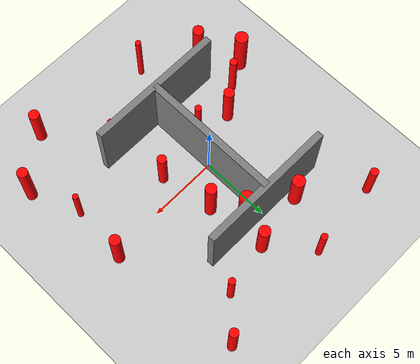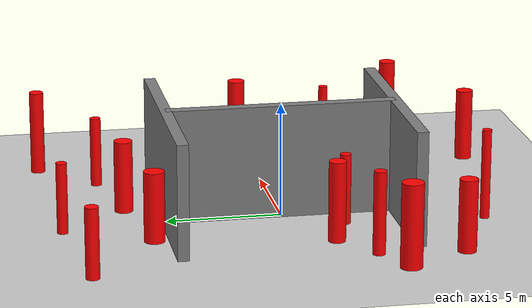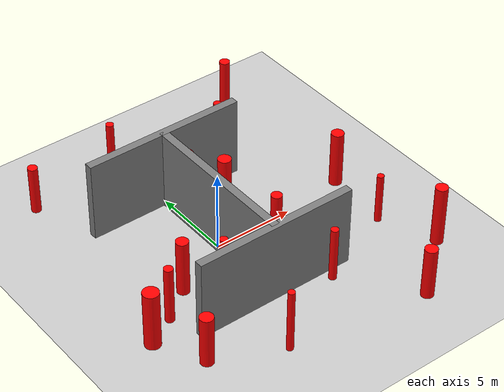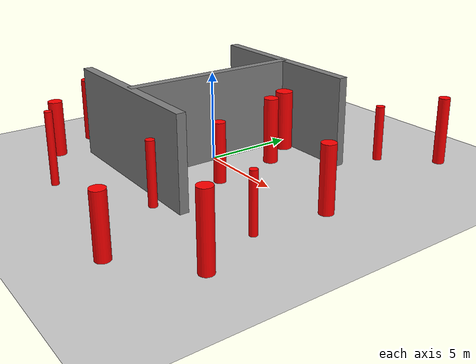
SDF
<sdf version='1.7'>
            <world name='default'>
                <light name='sun' type='directional'>
                <cast_shadows>1</cast_shadows>
                <pose>0 0 10 0 -0 0</pose>
                <diffuse>0.8 0.8 0.8 1</diffuse>
                <specular>0.2 0.2 0.2 1</specular>
                <attenuation>
                    <range>1000</range>
                    <constant>0.9</constant>
                    <linear>0.01</linear>
                    <quadratic>0.001</quadratic>
                </attenuation>
                <direction>-0.5 0.1 -0.9</direction>
                <spot>
                    <inner_angle>0</inner_angle>
                    <outer_angle>0</outer_angle>
                    <falloff>0</falloff>
                </spot>
                </light>
                <model name='ground_plane'>
                <static>1</static>
                <link name='link'>
                    <collision name='collision'>
                    <geometry>
                        <plane>
                        <normal>0 0 1</normal>
                        <size>100 100</size>
                        </plane>
                    </geometry>
                    <surface>
                        <contact>
                        <collide_bitmask>65535</collide_bitmask>
                        <ode/>
                        </contact>
                        <friction>
                        <ode>
                            <mu>100</mu>
                            <mu2>50</mu2>
                        </ode>
                        <torsional>
                            <ode/>
                        </torsional>
                        </friction>
                        <bounce/>
                    </surface>
                    <max_contacts>10</max_contacts>
                    </collision>
                    <visual name='visual'>
                    <cast_shadows>0</cast_shadows>
                    <geometry>
                        <plane>
                        <normal>0 0 1</normal>
                        <size>100 100</size>
                        </plane>
                    </geometry>
                    <material>
                        <script>
                        <uri>file://media/materials/scripts/gazebo.material</uri>
                        <name>Gazebo/Grey</name>
                        </script>
                    </material>
                    </visual>
                    <self_collide>0</self_collide>
                    <enable_wind>0</enable_wind>
                    <kinematic>0</kinematic>
                </link>
                </model>
                <gravity>0 0 -9.8</gravity>
                <magnetic_field>6e-06 2.3e-05 -4.2e-05</magnetic_field>
                <atmosphere type='adiabatic'/>
                <physics type='ode'>
                <max_step_size>0.001</max_step_size>
                <real_time_factor>1</real_time_factor>
                <real_time_update_rate>1000</real_time_update_rate>
                </physics>
                <scene>
                <ambient>0.4 0.4 0.4 1</ambient>
                <background>0.7 0.7 0.7 1</background>
                <shadows>1</shadows>
                </scene>
                <wind/>
                <spherical_coordinates>
                <surface_model>EARTH_WGS84</surface_model>
                <latitude_deg>0</latitude_deg>
                <longitude_deg>0</longitude_deg>
                <elevation>0</elevation>
                <heading_deg>0</heading_deg>
                </spherical_coordinates>

                            <model name='dynamic_cylinder_0_1.0_1.0_3.4'>
                            <static>true</static>
                            <pose>0.9762700785464951 4.30378732744839 1.7187936056313462 0 0 0</pose> <!-- X, Y, Z, Roll, Pitch, Yaw -->
                            <link name='link'>
                                <visual name='visual'>
                                    <geometry>
                                        <cylinder>
                                            <radius>0.4890988281503088</radius>
                                            <length>3.4375872112626924</length>
                                        </cylinder>
                                    </geometry>
                                    <material>
                                        <ambient>1 0 0 1</ambient> <!-- Red color -->
                                        <diffuse>1 0 0 1</diffuse> <!-- Red color -->
                                        <specular>0.5 0.5 0.5 1</specular> <!-- Specular highlight -->
                                    </material>
                                </visual>
                            </link>
                            <plugin name="obstacle_motion" filename="libobstaclePathPlugin.so">
                                <orientation>false</orientation>
                                <loop>0</loop>
                                <velocity>0.8917730007820798</velocity>
                                <path>
                                <waypoint>0.9762700785464951 4.30378732744839 1.7187936056313462</waypoint>
                                <waypoint>0.8976636599379368 -1.5269040132219054 1.7187936056313462</waypoint>
                                </path>
                            </plugin>
                            </model>

                            <model name='dynamic_cylinder_1_0.9_0.9_3.1'>
                            <static>true</static>
                            <pose>-2.3311696234844455 5.834500761653292 1.5435646498507705 0 0 0</pose> <!-- X, Y, Z, Roll, Pitch, Yaw -->
                            <link name='link'>
                                <visual name='visual'>
                                    <geometry>
                                        <cylinder>
                                            <radius>0.4497859536643814</radius>
                                            <length>3.087129299701541</length>
                                        </cylinder>
                                    </geometry>
                                    <material>
                                        <ambient>1 0 0 1</ambient> <!-- Red color -->
                                        <diffuse>1 0 0 1</diffuse> <!-- Red color -->
                                        <specular>0.5 0.5 0.5 1</specular> <!-- Specular highlight -->
                                    </material>
                                </visual>
                            </link>
                            <plugin name="obstacle_motion" filename="libobstaclePathPlugin.so">
                                <orientation>false</orientation>
                                <loop>0</loop>
                                <velocity>0.02021839744032572</velocity>
                                <path>
                                <waypoint>-2.3311696234844455 5.834500761653292 1.5435646498507705</waypoint>
                                <waypoint>1.3608912218786458 8.51193276585322 1.5435646498507705</waypoint>
                                </path>
                            </plugin>
                            </model>

                            <model name='dynamic_cylinder_2_0.5_0.5_3.1'>
                            <static>true</static>
                            <pose>5.563135018997009 7.400242964936382 1.5591372129344667 0 0 0</pose> <!-- X, Y, Z, Roll, Pitch, Yaw -->
                            <link name='link'>
                                <visual name='visual'>
                                    <geometry>
                                        <cylinder>
                                            <radius>0.24300598622271394</radius>
                                            <length>3.1182744258689334</length>
                                        </cylinder>
                                    </geometry>
                                    <material>
                                        <ambient>1 0 0 1</ambient> <!-- Red color -->
                                        <diffuse>1 0 0 1</diffuse> <!-- Red color -->
                                        <specular>0.5 0.5 0.5 1</specular> <!-- Specular highlight -->
                                    </material>
                                </visual>
                            </link>
                            <plugin name="obstacle_motion" filename="libobstaclePathPlugin.so">
                                <orientation>false</orientation>
                                <loop>0</loop>
                                <velocity>0.6399210213275238</velocity>
                                <path>
                                <waypoint>5.563135018997009 7.400242964936382 1.5591372129344667</waypoint>
                                <waypoint>5.983171284334471 -0.7704127549413631 1.5591372129344667</waypoint>
                                </path>
                            </plugin>
                            </model>

                            <model name='dynamic_cylinder_3_0.8_0.8_3.6'>
                            <static>true</static>
                            <pose>8.893378340991678 0.43696643500143395 1.7842169744343241 0 0 0</pose> <!-- X, Y, Z, Roll, Pitch, Yaw -->
                            <link name='link'>
                                <visual name='visual'>
                                    <geometry>
                                        <cylinder>
                                            <radius>0.3852906491227631</radius>
                                            <length>3.5684339488686483</length>
                                        </cylinder>
                                    </geometry>
                                    <material>
                                        <ambient>1 0 0 1</ambient> <!-- Red color -->
                                        <diffuse>1 0 0 1</diffuse> <!-- Red color -->
                                        <specular>0.5 0.5 0.5 1</specular> <!-- Specular highlight -->
                                    </material>
                                </visual>
                            </link>
                            <plugin name="obstacle_motion" filename="libobstaclePathPlugin.so">
                                <orientation>false</orientation>
                                <loop>0</loop>
                                <velocity>0.018789800436355142</velocity>
                                <path>
                                <waypoint>8.893378340991678 0.43696643500143395 1.7842169744343241</waypoint>
                                <waypoint>-4.70888775790746 5.484673788684333 1.7842169744343241</waypoint>
                                </path>
                            </plugin>
                            </model>

                            <model name='dynamic_cylinder_4_0.8_0.8_3.7'>
                            <static>true</static>
                            <pose>2.2419144544484286 2.3386799374951384 1.8488155979636325 0 0 0</pose> <!-- X, Y, Z, Roll, Pitch, Yaw -->
                            <link name='link'>
                                <visual name='visual'>
                                    <geometry>
                                        <cylinder>
                                            <radius>0.4000300146337003</radius>
                                            <length>3.697631195927265</length>
                                        </cylinder>
                                    </geometry>
                                    <material>
                                        <ambient>1 0 0 1</ambient> <!-- Red color -->
                                        <diffuse>1 0 0 1</diffuse> <!-- Red color -->
                                        <specular>0.5 0.5 0.5 1</specular> <!-- Specular highlight -->
                                    </material>
                                </visual>
                            </link>
                            <plugin name="obstacle_motion" filename="libobstaclePathPlugin.so">
                                <orientation>false</orientation>
                                <loop>0</loop>
                                <velocity>0.06022547162926983</velocity>
                                <path>
                                <waypoint>2.2419144544484286 2.3386799374951384 1.8488155979636325</waypoint>
                                <waypoint>3.636405982069668 -2.80984198852428 1.8488155979636325</waypoint>
                                </path>
                            </plugin>
                            </model>

                            <model name='dynamic_cylinder_5_0.5_0.5_3.4'>
                            <static>true</static>
                            <pose>3.412757392363188 -5.792348778523182 1.7193007567311602 0 0 0</pose> <!-- X, Y, Z, Roll, Pitch, Yaw -->
                            <link name='link'>
                                <visual name='visual'>
                                    <geometry>
                                        <cylinder>
                                            <radius>0.23061344322440844</radius>
                                            <length>3.4386015134623205</length>
                                        </cylinder>
                                    </geometry>
                                    <material>
                                        <ambient>1 0 0 1</ambient> <!-- Red color -->
                                        <diffuse>1 0 0 1</diffuse> <!-- Red color -->
                                        <specular>0.5 0.5 0.5 1</specular> <!-- Specular highlight -->
                                    </material>
                                </visual>
                            </link>
                            <plugin name="obstacle_motion" filename="libobstaclePathPlugin.so">
                                <orientation>false</orientation>
                                <loop>0</loop>
                                <velocity>0.9883738380592262</velocity>
                                <path>
                                <waypoint>3.412757392363188 -5.792348778523182 1.7193007567311602</waypoint>
                                <waypoint>-3.691432981516323 -2.725784581147548 1.7193007567311602</waypoint>
                                </path>
                            </plugin>
                            </model>

                            <model name='dynamic_cylinder_6_0.8_0.8_3.2'>
                            <static>true</static>
                            <pose>-5.822464878103306 -6.773809642300074 1.57948479182276 0 0 0</pose> <!-- X, Y, Z, Roll, Pitch, Yaw -->
                            <link name='link'>
                                <visual name='visual'>
                                    <geometry>
                                        <cylinder>
                                            <radius>0.396898876839582</radius>
                                            <length>3.15896958364552</length>
                                        </cylinder>
                                    </geometry>
                                    <material>
                                        <ambient>1 0 0 1</ambient> <!-- Red color -->
                                        <diffuse>1 0 0 1</diffuse> <!-- Red color -->
                                        <specular>0.5 0.5 0.5 1</specular> <!-- Specular highlight -->
                                    </material>
                                </visual>
                            </link>
                            <plugin name="obstacle_motion" filename="libobstaclePathPlugin.so">
                                <orientation>false</orientation>
                                <loop>0</loop>
                                <velocity>0.11037514116430513</velocity>
                                <path>
                                <waypoint>-5.822464878103306 -6.773809642300074 1.57948479182276</waypoint>
                                <waypoint>-4.934167949204358 -0.6737845428738751 1.57948479182276</waypoint>
                                </path>
                            </plugin>
                            </model>

                            <model name='dynamic_cylinder_7_0.5_0.5_3.1'>
                            <static>true</static>
                            <pose>-0.6269759670459685 9.535221763806742 1.5600982806065844 0 0 0</pose> <!-- X, Y, Z, Roll, Pitch, Yaw -->
                            <link name='link'>
                                <visual name='visual'>
                                    <geometry>
                                        <cylinder>
                                            <radius>0.23561831568627323</radius>
                                            <length>3.120196561213169</length>
                                        </cylinder>
                                    </geometry>
                                    <material>
                                        <ambient>1 0 0 1</ambient> <!-- Red color -->
                                        <diffuse>1 0 0 1</diffuse> <!-- Red color -->
                                        <specular>0.5 0.5 0.5 1</specular> <!-- Specular highlight -->
                                    </material>
                                </visual>
                            </link>
                            <plugin name="obstacle_motion" filename="libobstaclePathPlugin.so">
                                <orientation>false</orientation>
                                <loop>0</loop>
                                <velocity>0.29614019752214493</velocity>
                                <path>
                                <waypoint>-0.6269759670459685 9.535221763806742 1.5600982806065844</waypoint>
                                <waypoint>4.785271587966033 -9.216244154913586 1.5600982806065844</waypoint>
                                </path>
                            </plugin>
                            </model>

                            <model name='dynamic_cylinder_8_0.7_0.7_3.5'>
                            <static>true</static>
                            <pose>-3.6403364121204795 -1.7147401097066002 1.7616240267333498 0 0 0</pose> <!-- X, Y, Z, Roll, Pitch, Yaw -->
                            <link name='link'>
                                <visual name='visual'>
                                    <geometry>
                                        <cylinder>
                                            <radius>0.3727839486668538</radius>
                                            <length>3.5232480534666997</length>
                                        </cylinder>
                                    </geometry>
                                    <material>
                                        <ambient>1 0 0 1</ambient> <!-- Red color -->
                                        <diffuse>1 0 0 1</diffuse> <!-- Red color -->
                                        <specular>0.5 0.5 0.5 1</specular> <!-- Specular highlight -->
                                    </material>
                                </visual>
                            </link>
                            <plugin name="obstacle_motion" filename="libobstaclePathPlugin.so">
                                <orientation>false</orientation>
                                <loop>0</loop>
                                <velocity>0.09394051075844168</velocity>
                                <path>
                                <waypoint>-3.6403364121204795 -1.7147401097066002 1.7616240267333498</waypoint>
                                <waypoint>3.849442387400398 1.3320290841315021 1.7616240267333498</waypoint>
                                </path>
                            </plugin>
                            </model>

                            <model name='dynamic_cylinder_9_0.4_0.4_3.2'>
                            <static>true</static>
                            <pose>8.585923951524283 -3.628620950973527 1.5915956810035583 0 0 0</pose> <!-- X, Y, Z, Roll, Pitch, Yaw -->
                            <link name='link'>
                                <visual name='visual'>
                                    <geometry>
                                        <cylinder>
                                            <radius>0.20603226385624807</radius>
                                            <length>3.1831913620071166</length>
                                        </cylinder>
                                    </geometry>
                                    <material>
                                        <ambient>1 0 0 1</ambient> <!-- Red color -->
                                        <diffuse>1 0 0 1</diffuse> <!-- Red color -->
                                        <specular>0.5 0.5 0.5 1</specular> <!-- Specular highlight -->
                                    </material>
                                </visual>
                            </link>
                            <plugin name="obstacle_motion" filename="libobstaclePathPlugin.so">
                                <orientation>false</orientation>
                                <loop>0</loop>
                                <velocity>0.5865129348100832</velocity>
                                <path>
                                <waypoint>8.585923951524283 -3.628620950973527 1.5915956810035583</waypoint>
                                <waypoint>-7.364042751912157 4.32654408237131 1.5915956810035583</waypoint>
                                </path>
                            </plugin>
                            </model>

                            <model name='dynamic_cylinder_10_0.8_0.8_3.2'>
                            <static>true</static>
                            <pose>6.578800584347263 -9.906090476149059 1.624376571759979 0 0 0</pose> <!-- X, Y, Z, Roll, Pitch, Yaw -->
                            <link name='link'>
                                <visual name='visual'>
                                    <geometry>
                                        <cylinder>
                                            <radius>0.3776125793815517</radius>
                                            <length>3.248753143519958</length>
                                        </cylinder>
                                    </geometry>
                                    <material>
                                        <ambient>1 0 0 1</ambient> <!-- Red color -->
                                        <diffuse>1 0 0 1</diffuse> <!-- Red color -->
                                        <specular>0.5 0.5 0.5 1</specular> <!-- Specular highlight -->
                                    </material>
                                </visual>
                            </link>
                            <plugin name="obstacle_motion" filename="libobstaclePathPlugin.so">
                                <orientation>false</orientation>
                                <loop>0</loop>
                                <velocity>0.5761573344178369</velocity>
                                <path>
                                <waypoint>6.578800584347263 -9.906090476149059 1.624376571759979</waypoint>
                                <waypoint>-4.599840536156703 4.703880442451897 1.624376571759979</waypoint>
                                </path>
                            </plugin>
                            </model>

                            <model name='dynamic_cylinder_11_0.7_0.7_3.3'>
                            <static>true</static>
                            <pose>2.8798039845927477 -1.522899028836406 1.645038803605222 0 0 0</pose> <!-- X, Y, Z, Roll, Pitch, Yaw -->
                            <link name='link'>
                                <visual name='visual'>
                                    <geometry>
                                        <cylinder>
                                            <radius>0.32863061028372986</radius>
                                            <length>3.290077607210444</length>
                                        </cylinder>
                                    </geometry>
                                    <material>
                                        <ambient>1 0 0 1</ambient> <!-- Red color -->
                                        <diffuse>1 0 0 1</diffuse> <!-- Red color -->
                                        <specular>0.5 0.5 0.5 1</specular> <!-- Specular highlight -->
                                    </material>
                                </visual>
                            </link>
                            <plugin name="obstacle_motion" filename="libobstaclePathPlugin.so">
                                <orientation>false</orientation>
                                <loop>0</loop>
                                <velocity>0.6180154289988415</velocity>
                                <path>
                                <waypoint>2.8798039845927477 -1.522899028836406 1.645038803605222</waypoint>
                                <waypoint>-9.61613603381333 -3.9685036665090134 1.645038803605222</waypoint>
                                </path>
                            </plugin>
                            </model>

                            <model name='dynamic_cylinder_12_0.9_0.9_3.7'>
                            <static>true</static>
                            <pose>-7.290518715550995 -4.034353480879385 1.8260516350008444 0 0 0</pose> <!-- X, Y, Z, Roll, Pitch, Yaw -->
                            <link name='link'>
                                <visual name='visual'>
                                    <geometry>
                                        <cylinder>
                                            <radius>0.4689639787553189</radius>
                                            <length>3.652103270001689</length>
                                        </cylinder>
                                    </geometry>
                                    <material>
                                        <ambient>1 0 0 1</ambient> <!-- Red color -->
                                        <diffuse>1 0 0 1</diffuse> <!-- Red color -->
                                        <specular>0.5 0.5 0.5 1</specular> <!-- Specular highlight -->
                                    </material>
                                </visual>
                            </link>
                            <plugin name="obstacle_motion" filename="libobstaclePathPlugin.so">
                                <orientation>false</orientation>
                                <loop>0</loop>
                                <velocity>0.43141843543397396</velocity>
                                <path>
                                <waypoint>-7.290518715550995 -4.034353480879385 1.8260516350008444</waypoint>
                                <waypoint>1.8174552249634637 1.4865049769915757 1.8260516350008444</waypoint>
                                </path>
                            </plugin>
                            </model>

                            <model name='dynamic_cylinder_13_0.7_0.7_3.8'>
                            <static>true</static>
                            <pose>9.976940131357331 -7.011033906840125 1.924004114661117 0 0 0</pose> <!-- X, Y, Z, Roll, Pitch, Yaw -->
                            <link name='link'>
                                <visual name='visual'>
                                    <geometry>
                                        <cylinder>
                                            <radius>0.37073022158437796</radius>
                                            <length>3.848008229322234</length>
                                        </cylinder>
                                    </geometry>
                                    <material>
                                        <ambient>1 0 0 1</ambient> <!-- Red color -->
                                        <diffuse>1 0 0 1</diffuse> <!-- Red color -->
                                        <specular>0.5 0.5 0.5 1</specular> <!-- Specular highlight -->
                                    </material>
                                </visual>
                            </link>
                            <plugin name="obstacle_motion" filename="libobstaclePathPlugin.so">
                                <orientation>false</orientation>
                                <loop>0</loop>
                                <velocity>0.8073189587250107</velocity>
                                <path>
                                <waypoint>9.976940131357331 -7.011033906840125 1.924004114661117</waypoint>
                                <waypoint>-6.7501413064725035 2.311191285676884 1.924004114661117</waypoint>
                                </path>
                            </plugin>
                            </model>

                            <model name='dynamic_cylinder_14_0.4_0.4_4.0'>
                            <static>true</static>
                            <pose>-1.8563340554800067 -8.61666009089724 1.987760752501443 0 0 0</pose> <!-- X, Y, Z, Roll, Pitch, Yaw -->
                            <link name='link'>
                                <visual name='visual'>
                                    <geometry>
                                        <cylinder>
                                            <radius>0.2035142252555006</radius>
                                            <length>3.975521505002886</length>
                                        </cylinder>
                                    </geometry>
                                    <material>
                                        <ambient>1 0 0 1</ambient> <!-- Red color -->
                                        <diffuse>1 0 0 1</diffuse> <!-- Red color -->
                                        <specular>0.5 0.5 0.5 1</specular> <!-- Specular highlight -->
                                    </material>
                                </visual>
                            </link>
                            <plugin name="obstacle_motion" filename="libobstaclePathPlugin.so">
                                <orientation>false</orientation>
                                <loop>0</loop>
                                <velocity>0.855803342392611</velocity>
                                <path>
                                <waypoint>-1.8563340554800067 -8.61666009089724 1.987760752501443</waypoint>
                                <waypoint>-0.9291463464386229 4.441111989406959 1.987760752501443</waypoint>
                                </path>
                            </plugin>
                            </model>

                            <model name='dynamic_cylinder_15_0.5_0.5_3.6'>
                            <static>true</static>
                            <pose>-5.521506238792398 -3.0929663860619456 1.8107392007498817 0 0 0</pose> <!-- X, Y, Z, Roll, Pitch, Yaw -->
                            <link name='link'>
                                <visual name='visual'>
                                    <geometry>
                                        <cylinder>
                                            <radius>0.27136784641235256</radius>
                                            <length>3.6214784014997634</length>
                                        </cylinder>
                                    </geometry>
                                    <material>
                                        <ambient>1 0 0 1</ambient> <!-- Red color -->
                                        <diffuse>1 0 0 1</diffuse> <!-- Red color -->
                                        <specular>0.5 0.5 0.5 1</specular> <!-- Specular highlight -->
                                    </material>
                                </visual>
                            </link>
                            <plugin name="obstacle_motion" filename="libobstaclePathPlugin.so">
                                <orientation>false</orientation>
                                <loop>0</loop>
                                <velocity>0.5772285886041676</velocity>
                                <path>
                                <waypoint>-5.521506238792398 -3.0929663860619456 1.8107392007498817</waypoint>
                                <waypoint>4.088288038470655 -9.363221409373843 1.8107392007498817</waypoint>
                                </path>
                            </plugin>
                            </model>

                            <model name='dynamic_cylinder_16_0.6_0.6_3.1'>
                            <static>true</static>
                            <pose>-6.276139882393277 8.887447799678672 1.5290145801619377 0 0 0</pose> <!-- X, Y, Z, Roll, Pitch, Yaw -->
                            <link name='link'>
                                <visual name='visual'>
                                    <geometry>
                                        <cylinder>
                                            <radius>0.2935387645982308</radius>
                                            <length>3.0580291603238754</length>
                                        </cylinder>
                                    </geometry>
                                    <material>
                                        <ambient>1 0 0 1</ambient> <!-- Red color -->
                                        <diffuse>1 0 0 1</diffuse> <!-- Red color -->
                                        <specular>0.5 0.5 0.5 1</specular> <!-- Specular highlight -->
                                    </material>
                                </visual>
                            </link>
                            <plugin name="obstacle_motion" filename="libobstaclePathPlugin.so">
                                <orientation>false</orientation>
                                <loop>0</loop>
                                <velocity>0.4344166255581208</velocity>
                                <path>
                                <waypoint>-6.276139882393277 8.887447799678672 1.5290145801619377</waypoint>
                                <waypoint>-0.1908238276486589 -5.451707440533536 1.5290145801619377</waypoint>
                                </path>
                            </plugin>
                            </model>

                            <model name='dynamic_cylinder_17_0.6_0.6_3.8'>
                            <static>true</static>
                            <pose>7.933425860806842 9.806778947934088 1.8791893269180706 0 0 0</pose> <!-- X, Y, Z, Roll, Pitch, Yaw -->
                            <link name='link'>
                                <visual name='visual'>
                                    <geometry>
                                        <cylinder>
                                            <radius>0.3150391682515694</radius>
                                            <length>3.7583786538361412</length>
                                        </cylinder>
                                    </geometry>
                                    <material>
                                        <ambient>1 0 0 1</ambient> <!-- Red color -->
                                        <diffuse>1 0 0 1</diffuse> <!-- Red color -->
                                        <specular>0.5 0.5 0.5 1</specular> <!-- Specular highlight -->
                                    </material>
                                </visual>
                            </link>
                            <plugin name="obstacle_motion" filename="libobstaclePathPlugin.so">
                                <orientation>false</orientation>
                                <loop>0</loop>
                                <velocity>0.32001715082246784</velocity>
                                <path>
                                <waypoint>7.933425860806842 9.806778947934088 1.8791893269180706</waypoint>
                                <waypoint>3.261564062002016 -4.733552465256987 1.8791893269180706</waypoint>
                                </path>
                            </plugin>
                            </model>

                            <model name='dynamic_cylinder_18_0.8_0.8_3.2'>
                            <static>true</static>
                            <pose>1.766342271072114 6.620969104723809 1.592817972152976 0 0 0</pose> <!-- X, Y, Z, Roll, Pitch, Yaw -->
                            <link name='link'>
                                <visual name='visual'>
                                    <geometry>
                                        <cylinder>
                                            <radius>0.4062464829163446</radius>
                                            <length>3.185635944305952</length>
                                        </cylinder>
                                    </geometry>
                                    <material>
                                        <ambient>1 0 0 1</ambient> <!-- Red color -->
                                        <diffuse>1 0 0 1</diffuse> <!-- Red color -->
                                        <specular>0.5 0.5 0.5 1</specular> <!-- Specular highlight -->
                                    </material>
                                </visual>
                            </link>
                            <plugin name="obstacle_motion" filename="libobstaclePathPlugin.so">
                                <orientation>false</orientation>
                                <loop>0</loop>
                                <velocity>0.9527916569719446</velocity>
                                <path>
                                <waypoint>1.766342271072114 6.620969104723809 1.592817972152976</waypoint>
                                <waypoint>7.453013108947907 -4.529159303687285 1.592817972152976</waypoint>
                                </path>
                            </plugin>
                            </model>

                            <model name='dynamic_cylinder_19_0.5_0.5_3.1'>
                            <static>true</static>
                            <pose>-1.5062906249698749 -2.516600393315489 1.5587659279810167 0 0 0</pose> <!-- X, Y, Z, Roll, Pitch, Yaw -->
                            <link name='link'>
                                <visual name='visual'>
                                    <geometry>
                                        <cylinder>
                                            <radius>0.239620431903546</radius>
                                            <length>3.1175318559620333</length>
                                        </cylinder>
                                    </geometry>
                                    <material>
                                        <ambient>1 0 0 1</ambient> <!-- Red color -->
                                        <diffuse>1 0 0 1</diffuse> <!-- Red color -->
                                        <specular>0.5 0.5 0.5 1</specular> <!-- Specular highlight -->
                                    </material>
                                </visual>
                            </link>
                            <plugin name="obstacle_motion" filename="libobstaclePathPlugin.so">
                                <orientation>false</orientation>
                                <loop>0</loop>
                                <velocity>0.5173791071541142</velocity>
                                <path>
                                <waypoint>-1.5062906249698749 -2.516600393315489 1.5587659279810167</waypoint>
                                <waypoint>-4.447425874105361 1.735686929163375 1.5587659279810167</waypoint>
                                </path>
                            </plugin>
// ... existing code ...
                            </model>
                            <model name='high_wall'>
                                <static>true</static>
                                <pose>0 0 2.5 0 0 0</pose> <!-- X, Y, Z, Roll, Pitch, Yaw -->
                                <link name='link'>
                                    <visual name='visual'>
                                        <geometry>
                                            <box>
                                                <size>0.5 10 5</size> <!-- Width, Depth, Height -->
                                            </box>
                                        </geometry>
                                        <material>
                                            <ambient>0.5 0.5 0.5 1</ambient> <!-- Gray color -->
                                            <diffuse>0.5 0.5 0.5 1</diffuse> <!-- Gray color -->
                                            <specular>0.3 0.3 0.3 1</specular> <!-- Specular highlight -->
                                        </material>
                                    </visual>
                                    <collision name='collision'>
                                        <geometry>
                                            <box>
                                                <size>0.5 10 5</size>
                                            </box>
                                        </geometry>
                                    </collision>
                                </link>
                            </model>

                            <!-- New wall perpendicular to the existing wall along X-axis, positioned at one end -->
                            <model name='high_wall_side_1'>
                                <static>true</static>
                                <pose>0 5 2.5 0 0 1.5708</pose> <!-- Rotated 90 degrees around Z-axis -->
                                <link name='link'>
                                    <visual name='visual'>
                                        <geometry>
                                            <box>
                                                <size>0.5 10 5</size> <!-- Same dimensions as original wall -->
                                            </box>
                                        </geometry>
                                        <material>
                                            <ambient>0.5 0.5 0.5 1</ambient> <!-- Gray color -->
                                            <diffuse>0.5 0.5 0.5 1</diffuse> <!-- Gray color -->
                                            <specular>0.3 0.3 0.3 1</specular> <!-- Specular highlight -->
                                        </material>
                                    </visual>
                                    <collision name='collision'>
                                        <geometry>
                                            <box>
                                                <size>0.5 10 5</size>
                                            </box>
                                        </geometry>
                                    </collision>
                                </link>
                            </model>

                            <!-- New wall perpendicular to the existing wall along X-axis, positioned at the other end -->
                            <model name='high_wall_side_2'>
                                <static>true</static>
                                <pose>0 -5 2.5 0 0 1.5708</pose> <!-- Rotated 90 degrees around Z-axis -->
                                <link name='link'>
                                    <visual name='visual'>
                                        <geometry>
                                            <box>
                                                <size>0.5 10 5</size> <!-- Same dimensions as original wall -->
                                            </box>
                                        </geometry>
                                        <material>
                                            <ambient>0.5 0.5 0.5 1</ambient> <!-- Gray color -->
                                            <diffuse>0.5 0.5 0.5 1</diffuse> <!-- Gray color -->
                                            <specular>0.3 0.3 0.3 1</specular> <!-- Specular highlight -->
                                        </material>
                                    </visual>
                                    <collision name='collision'>
                                        <geometry>
                                            <box>
                                                <size>0.5 10 5</size>
                                            </box>
                                        </geometry>
                                    </collision>
                                </link>
                            </model>

// ... existing code ...

            </world>
            </sdf>
